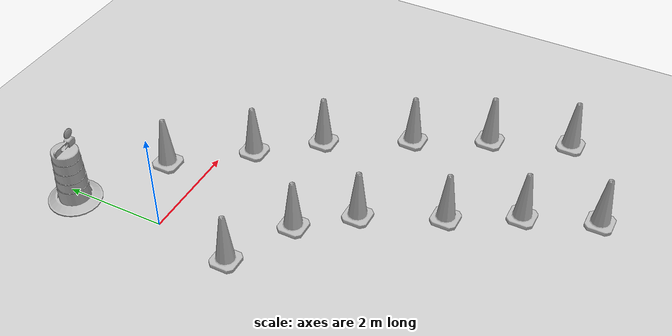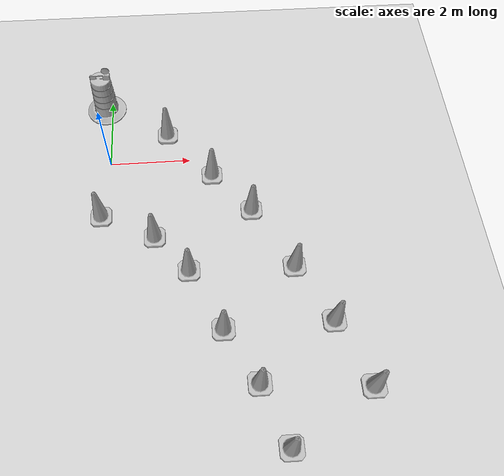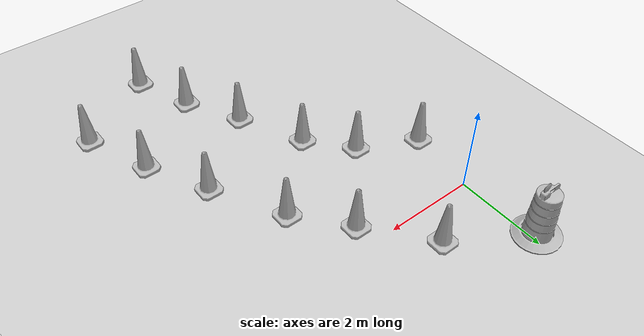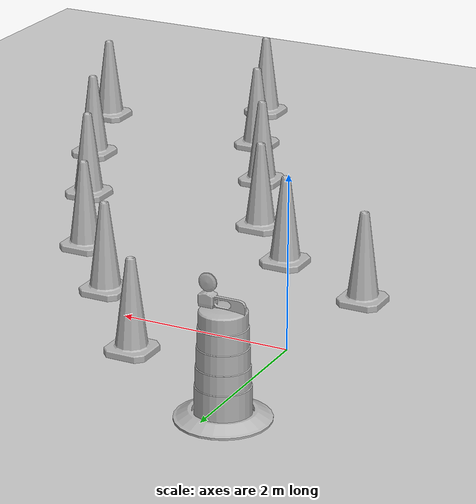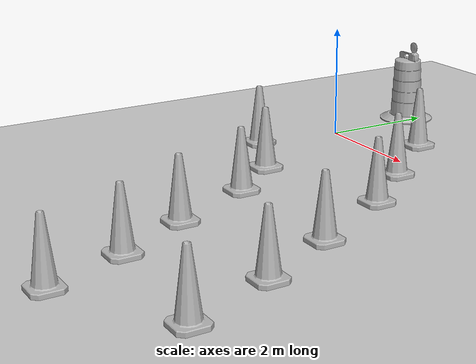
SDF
<sdf version="1.7">
 <world name="default">
  <light name="sun" type="directional">
   <pose>0 0 10 0 -0 0</pose>
   <diffuse>0.8 0.8 0.8 1</diffuse>
   <specular>0.2 0.2 0.2 1</specular>
   <attenuation>
    <range>1000</range>
    <constant>0.9</constant>
    <linear>0.01</linear>
    <quadratic>0.001</quadratic>
   </attenuation>
   <direction>-0.5 0.1 -0.9</direction>
   <spot><inner_angle>0</inner_angle><outer_angle>0</outer_angle><falloff>0</falloff></spot>
  </light>
  <model name="ground_plane">
   <static>1</static>
   <link name="link">
    <collision name="collision">
     <geometry><plane><normal>0 0 1</normal><size>100 100</size></plane></geometry>
     <surface>
      <contact><collide_bitmask>65535</collide_bitmask></contact>
      <friction><ode><mu>100</mu><mu2>50</mu2></ode></friction>
     </surface>
    </collision>
    <visual name="visual">
     <cast_shadows>0</cast_shadows>
     <geometry><plane><normal>0 0 1</normal><size>100 100</size></plane></geometry>
     <material>
      <script><uri>file://media/materials/scripts/gazebo.material</uri><name>Gazebo/Grey</name></script>
     </material>
    </visual>
   </link>
  </model>
  <gravity>0 0 -9.8</gravity>
  <magnetic_field>6e-06 2.3e-05 -4.2e-05</magnetic_field>
  <atmosphere type="adiabatic"/>
  <physics type="ode">
   <max_step_size>0.001</max_step_size>
   <real_time_factor>1</real_time_factor>
   <real_time_update_rate>1000</real_time_update_rate>
  </physics>
  <scene><ambient>0.4 0.4 0.4 1</ambient><background>0.7 0.7 0.7 1</background><shadows>1</shadows></scene>
  <spherical_coordinates>
   <surface_model>EARTH_WGS84</surface_model>
   <latitude_deg>0</latitude_deg>
   <longitude_deg>0</longitude_deg>
   <elevation>0</elevation>
   <heading_deg>0</heading_deg>
  </spherical_coordinates>
  <model name="Construction Barrel">
   <link name="link">
    <inertial>
     <pose>0 0 0.4 0 -0 0</pose>
     <mass>500</mass>
     <inertia><ixx>51.2096</ixx><iyy>51.2096</iyy><izz>25</izz><ixy>0</ixy><ixz>0</ixz><iyz>0</iyz></inertia>
    </inertial>
    <collision name="collision">
     <geometry><mesh><uri>model://construction_barrel/meshes/construction_barrel.dae</uri></mesh></geometry>
    </collision>
    <visual name="visual">
     <geometry><mesh><uri>model://construction_barrel/meshes/construction_barrel.dae</uri></mesh></geometry>
    </visual>
   </link>
   <pose>-0.151466 1.79787 -0 0 0 -2.1e-05</pose>
  </model>
  <model name="Construction Cone">
   <link name="link">
    <collision name="collision">
     <geometry>
      <mesh><scale>10 10 10</scale><uri>model://construction_cone/meshes/construction_cone.dae</uri></mesh>
     </geometry>
    </collision>
    <visual name="visual">
     <geometry>
      <mesh><scale>10 10 10</scale><uri>model://construction_cone/meshes/construction_cone.dae</uri></mesh>
     </geometry>
    </visual>
    <inertial>
     <inertia><ixx>1</ixx><ixy>0</ixy><ixz>0</ixz><iyy>1</iyy><iyz>0</iyz><izz>1</izz></inertia>
     <mass>1</mass>
    </inertial>
   </link>
   <pose>1.45458 0.812223 -0 0 -1e-06 0</pose>
  </model>
  <model name="Construction Cone_0">
   <link name="link">
    <collision name="collision">
     <geometry>
      <mesh><scale>10 10 10</scale><uri>model://construction_cone/meshes/construction_cone.dae</uri></mesh>
     </geometry>
    </collision>
    <visual name="visual">
     <geometry>
      <mesh><scale>10 10 10</scale><uri>model://construction_cone/meshes/construction_cone.dae</uri></mesh>
     </geometry>
    </visual>
    <inertial>
     <inertia><ixx>1</ixx><ixy>0</ixy><ixz>0</ixz><iyy>1</iyy><iyz>0</iyz><izz>1</izz></inertia>
     <mass>1</mass>
    </inertial>
   </link>
   <pose>-0.197035 -1.5572 -0 0 -1e-06 0</pose>
  </model>
  <model name="Construction Cone_0_clone">
   <link name="link">
    <collision name="collision">
     <geometry>
      <mesh><scale>10 10 10</scale><uri>model://construction_cone/meshes/construction_cone.dae</uri></mesh>
     </geometry>
    </collision>
    <visual name="visual">
     <geometry>
      <mesh><scale>10 10 10</scale><uri>model://construction_cone/meshes/construction_cone.dae</uri></mesh>
     </geometry>
    </visual>
    <inertial>
     <inertia><ixx>1</ixx><ixy>0</ixy><ixz>0</ixz><iyy>1</iyy><iyz>0</iyz><izz>1</izz></inertia>
     <mass>1</mass>
    </inertial>
   </link>
   <pose>1.08176 -2.19688 -0 0 -0 0</pose>
  </model>
  <model name="Construction Cone_0_clone_0">
   <link name="link">
    <collision name="collision">
     <geometry>
      <mesh><scale>10 10 10</scale><uri>model://construction_cone/meshes/construction_cone.dae</uri></mesh>
     </geometry>
    </collision>
    <visual name="visual">
     <geometry>
      <mesh><scale>10 10 10</scale><uri>model://construction_cone/meshes/construction_cone.dae</uri></mesh>
     </geometry>
    </visual>
    <inertial>
     <inertia><ixx>1</ixx><ixy>0</ixy><ixz>0</ixz><iyy>1</iyy><iyz>0</iyz><izz>1</izz></inertia>
     <mass>1</mass>
    </inertial>
   </link>
   <pose>2.53349 -0.503105 0 -0 -0 -0</pose>
  </model>
  <model name="Construction Cone_0_clone_1">
   <link name="link">
    <collision name="collision">
     <geometry>
      <mesh><scale>10 10 10</scale><uri>model://construction_cone/meshes/construction_cone.dae</uri></mesh>
     </geometry>
    </collision>
    <visual name="visual">
     <geometry>
      <mesh><scale>10 10 10</scale><uri>model://construction_cone/meshes/construction_cone.dae</uri></mesh>
     </geometry>
    </visual>
    <inertial>
     <inertia><ixx>1</ixx><ixy>0</ixy><ixz>0</ixz><iyy>1</iyy><iyz>0</iyz><izz>1</izz></inertia>
     <mass>1</mass>
    </inertial>
   </link>
   <pose>1.85995 -3.11436 -0 0 -1e-06 0</pose>
  </model>
  <model name="Construction Cone_0_clone_2">
   <link name="link">
    <collision name="collision">
     <geometry>
      <mesh><scale>10 10 10</scale><uri>model://construction_cone/meshes/construction_cone.dae</uri></mesh>
     </geometry>
    </collision>
    <visual name="visual">
     <geometry>
      <mesh><scale>10 10 10</scale><uri>model://construction_cone/meshes/construction_cone.dae</uri></mesh>
     </geometry>
    </visual>
    <inertial>
     <inertia><ixx>1</ixx><ixy>0</ixy><ixz>0</ixz><iyy>1</iyy><iyz>0</iyz><izz>1</izz></inertia>
     <mass>1</mass>
    </inertial>
   </link>
   <pose>3.43091 -1.58001 -0 0 -0 0</pose>
  </model>
  <model name="Construction Cone_0_clone_3">
   <link name="link">
    <collision name="collision">
     <geometry>
      <mesh><scale>10 10 10</scale><uri>model://construction_cone/meshes/construction_cone.dae</uri></mesh>
     </geometry>
    </collision>
    <visual name="visual">
     <geometry>
      <mesh><scale>10 10 10</scale><uri>model://construction_cone/meshes/construction_cone.dae</uri></mesh>
     </geometry>
    </visual>
    <inertial>
     <inertia><ixx>1</ixx><ixy>0</ixy><ixz>0</ixz><iyy>1</iyy><iyz>0</iyz><izz>1</izz></inertia>
     <mass>1</mass>
    </inertial>
   </link>
   <pose>4.2911 -3.14254 -0 0 -0 0</pose>
  </model>
  <model name="Construction Cone_0_clone_4">
   <link name="link">
    <collision name="collision">
     <geometry>
      <mesh><scale>10 10 10</scale><uri>model://construction_cone/meshes/construction_cone.dae</uri></mesh>
     </geometry>
    </collision>
    <visual name="visual">
     <geometry>
      <mesh><scale>10 10 10</scale><uri>model://construction_cone/meshes/construction_cone.dae</uri></mesh>
     </geometry>
    </visual>
    <inertial>
     <inertia><ixx>1</ixx><ixy>0</ixy><ixz>0</ixz><iyy>1</iyy><iyz>0</iyz><izz>1</izz></inertia>
     <mass>1</mass>
    </inertial>
   </link>
   <pose>2.55755 -4.56699 0 -0 -0 -0</pose>
  </model>
  <model name="Construction Cone_0_clone_5">
   <link name="link">
    <collision name="collision">
     <geometry>
      <mesh><scale>10 10 10</scale><uri>model://construction_cone/meshes/construction_cone.dae</uri></mesh>
     </geometry>
    </collision>
    <visual name="visual">
     <geometry>
      <mesh><scale>10 10 10</scale><uri>model://construction_cone/meshes/construction_cone.dae</uri></mesh>
     </geometry>
    </visual>
    <inertial>
     <inertia><ixx>1</ixx><ixy>0</ixy><ixz>0</ixz><iyy>1</iyy><iyz>0</iyz><izz>1</izz></inertia>
     <mass>1</mass>
    </inertial>
   </link>
   <pose>5.00601 -4.51062 -1e-05 0 -0 0</pose>
  </model>
  <model name="Construction Cone_0_clone_6">
   <link name="link">
    <collision name="collision">
     <geometry>
      <mesh><scale>10 10 10</scale><uri>model://construction_cone/meshes/construction_cone.dae</uri></mesh>
     </geometry>
    </collision>
    <visual name="visual">
     <geometry>
      <mesh><scale>10 10 10</scale><uri>model://construction_cone/meshes/construction_cone.dae</uri></mesh>
     </geometry>
    </visual>
    <inertial>
     <inertia><ixx>1</ixx><ixy>0</ixy><ixz>0</ixz><iyy>1</iyy><iyz>0</iyz><izz>1</izz></inertia>
     <mass>1</mass>
    </inertial>
   </link>
   <pose>3.23881 -5.79909 -0 0 -1e-06 0</pose>
  </model>
  <model name="Construction Cone_0_clone_7">
   <link name="link">
    <collision name="collision">
     <geometry>
      <mesh><scale>10 10 10</scale><uri>model://construction_cone/meshes/construction_cone.dae</uri></mesh>
     </geometry>
    </collision>
    <visual name="visual">
     <geometry>
      <mesh><scale>10 10 10</scale><uri>model://construction_cone/meshes/construction_cone.dae</uri></mesh>
     </geometry>
    </visual>
    <inertial>
     <inertia><ixx>1</ixx><ixy>0</ixy><ixz>0</ixz><iyy>1</iyy><iyz>0</iyz><izz>1</izz></inertia>
     <mass>1</mass>
    </inertial>
   </link>
   <pose>5.60996 -5.99053 -0 0 -0 0</pose>
  </model>
  <model name="Construction Cone_0_clone_8">
   <link name="link">
    <collision name="collision">
     <geometry>
      <mesh><scale>10 10 10</scale><uri>model://construction_cone/meshes/construction_cone.dae</uri></mesh>
     </geometry>
    </collision>
    <visual name="visual">
     <geometry>
      <mesh><scale>10 10 10</scale><uri>model://construction_cone/meshes/construction_cone.dae</uri></mesh>
     </geometry>
    </visual>
    <inertial>
     <inertia><ixx>1</ixx><ixy>0</ixy><ixz>0</ixz><iyy>1</iyy><iyz>0</iyz><izz>1</izz></inertia>
     <mass>1</mass>
    </inertial>
   </link>
   <pose>3.74938 -7.11004 -0 0 -0 0</pose>
  </model>
 </world>
</sdf>
